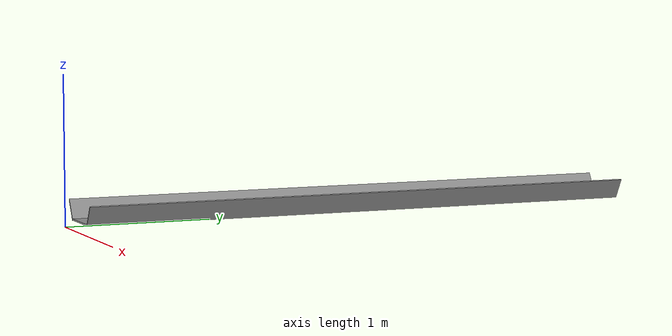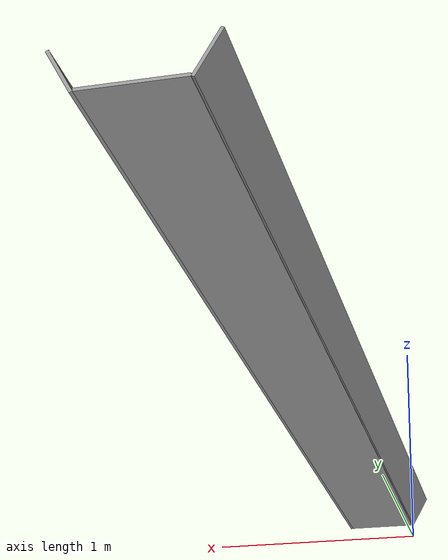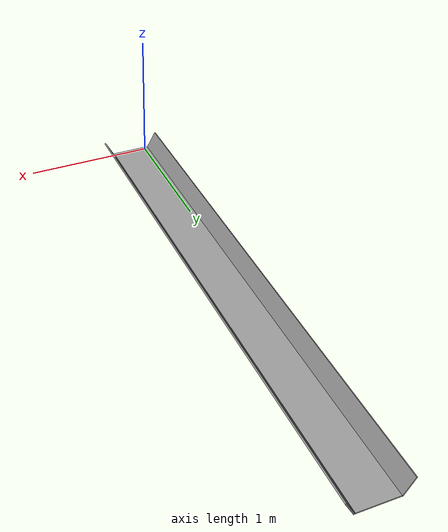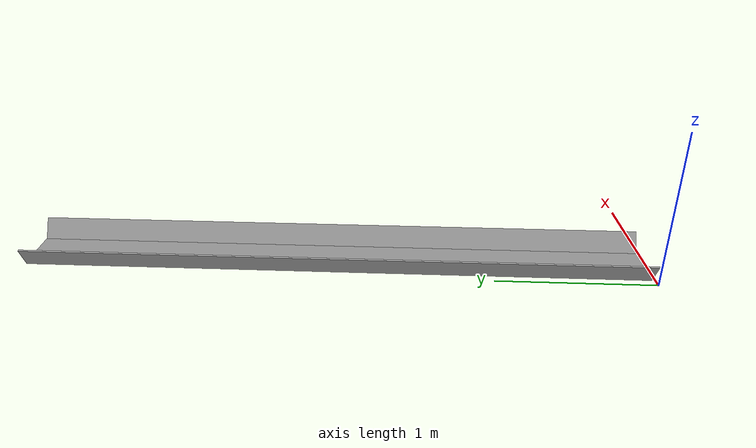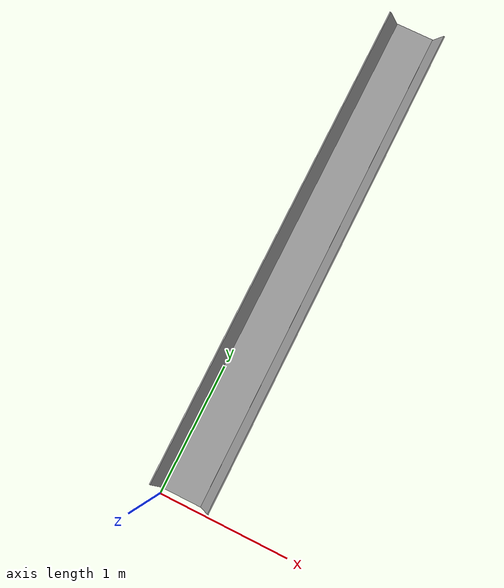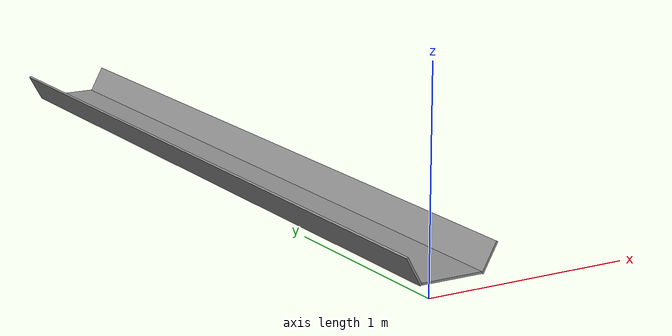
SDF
<?xml version="1.0" ?>
<sdf version="1.5">
  <model name="mbzirc_uav_channel_2">
    <static>true</static>
    <link name="link1">
	<pose frame=''>0.15 2.0 0.05 0 0.0 0</pose>
      <collision name="collision">
        <geometry>
          <box>
            <size>0.3 3.9 0.01</size>
          </box>
        </geometry>
      </collision>
      <visual name="visual">
        <cast_shadows>false</cast_shadows>
        <geometry>
          <box>
            <size>0.3 3.9 0.01</size>
          </box>
        </geometry>
        <material>
          <script>
            <name>Gazebo/Grey</name>
            <uri>file://media/materials/scripts/gazebo.material</uri>
          </script>
        </material>
      </visual>
    </link>
    <link name="link2">
	<pose frame=''>-0.04 2.0 0.11 0.0 -0.5 0.0</pose>
      <collision name="collision">
        <geometry>
          <box>
            <size>0.01 3.9 0.15</size>
          </box>
        </geometry>
      </collision>
      <visual name="visual">
        <cast_shadows>false</cast_shadows>
        <geometry>
          <box>
            <size>0.01 3.9 0.15</size>
          </box>
        </geometry>
        <material>
          <script>
            <name>Gazebo/Grey</name>
            <uri>file://media/materials/scripts/gazebo.material</uri>
          </script>
        </material>
      </visual>
    </link>
    <link name="link3">
	<pose frame=''>0.34 2.0 0.11 0.0 0.5 0.0</pose>
      <collision name="collision">
        <geometry>
          <box>
            <size>0.01 3.9 0.15</size>
          </box>
        </geometry>
      </collision>
      <visual name="visual">
        <cast_shadows>false</cast_shadows>
        <geometry>
          <box>
            <size>0.01 3.9 0.15</size>
          </box>
        </geometry>
        <material>
          <script>
            <name>Gazebo/Grey</name>
            <uri>file://media/materials/scripts/gazebo.material</uri>
          </script>
        </material>
      </visual>
    </link>
  </model>
</sdf>
